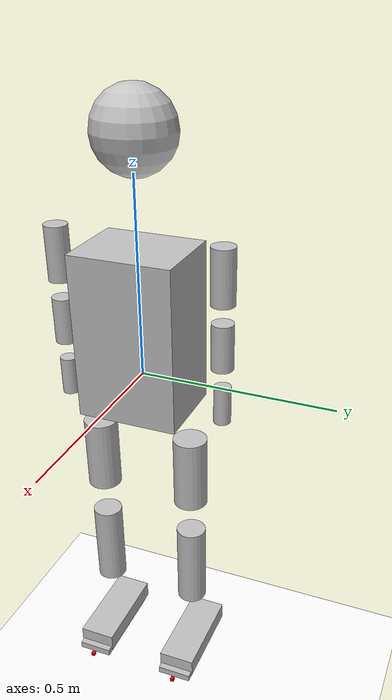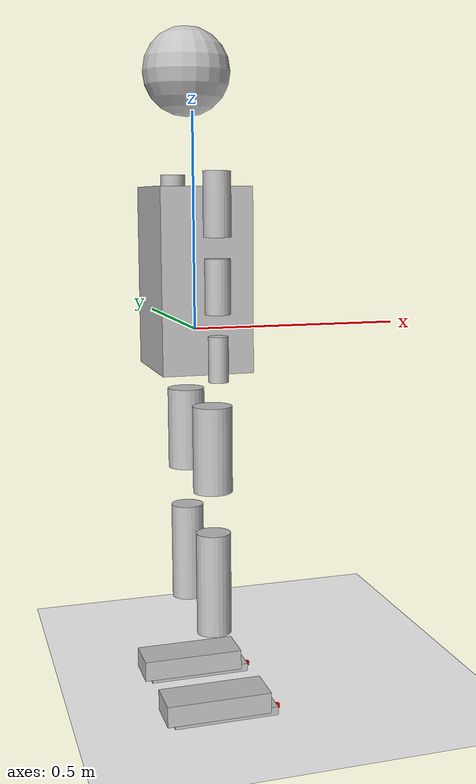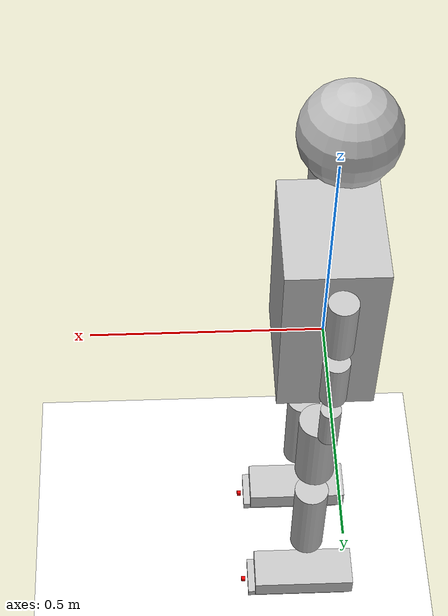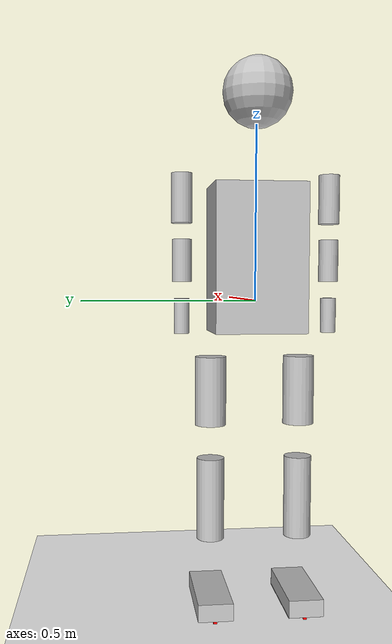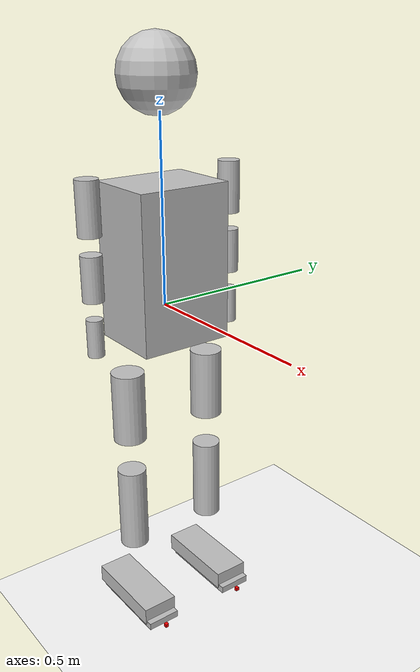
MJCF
<mujoco model="HU_D04_01">
  <compiler angle="radian" meshdir="../meshes_mujoco/" autolimits="true"/>
  <worldbody>
    <geom name="ground" type="plane" size="10 10 0.1" pos="0 0 -0.91" rgba="1 1 1 1"/>
    <body name="base_link">
      <inertial pos="0.002916 -8e-06 0.041359" quat="0.612805 0.613066 -0.352574 0.352579" mass="5.90496" diaginertia="0.0416288 0.0370522 0.013916"/>
      <joint name="floating_base_joint" type="free"/>
      <geom size="0.105 0.13 0.21" pos="0 0 0.12" type="box" contype="0" conaffinity="0" group="1" density="0" rgba="0.75294 0.75294 0.75294 1"/>
      <body name="left_hip_pitch_link" pos="0.017007 0.1283 0.0081917">
        <inertial pos="0.0019 0.001536 -0.086008" quat="0.707518 0.0266383 1.73517e-05 0.706193" mass="2.25501" diaginertia="0.00381732 0.00323349 0.00288619"/>
        <joint name="left_hip_pitch_joint" pos="0 0 0" axis="0 0.906308 -0.422619" range="-2.618 2.618"/>
        <body name="left_hip_roll_link" pos="-0.01 0.0016596 -0.0920417">
          <inertial pos="0.00075 1e-05 -0.118609" quat="0.711183 0.0283968 0.0283187 0.701862" mass="2.12181" diaginertia="0.00426704 0.00404598 0.00233098"/>
          <joint name="left_hip_roll_joint" pos="0 0 0" axis="1 0 0" range="-0.8727 2.094"/>
          <body name="left_hip_yaw_link" pos="0 0 -0.1774">
            <inertial pos="0.006364 0.000963 -0.143266" quat="0.708658 0.0234255 0.019567 0.704891" mass="2.9941" diaginertia="0.0246096 0.0241756 0.00478379"/>
            <joint name="left_hip_yaw_joint" pos="0 0 0" axis="0 0 1" range="-2.618 2.618"/>
            <geom size="0.045 0.1" type="cylinder" contype="0" conaffinity="0" group="1" density="0" rgba="0.75294 0.75294 0.75294 1"/>
            <body name="left_knee_link" pos="0 0 -0.1976">
              <inertial pos="0.007614 0.005361 -0.142099" quat="0.988682 -0.0432819 0.00451233 0.143575" mass="2.95837" diaginertia="0.0278704 0.0275597 0.00283291"/>
              <joint name="left_knee_joint" pos="0 0 0" axis="0 1 0" range="-0.087 2.583"/>
              <geom size="0.04 0.12" pos="0 0 -0.12" type="cylinder" contype="0" conaffinity="0" group="1" density="0" rgba="0.75294 0.75294 0.75294 1"/>
              <body name="left_ankle_pitch_link" pos="0 0 -0.385">
                <inertial pos="0 0 0.001077" quat="0.707107 0.707107 0 0" mass="0.042944" diaginertia="4e-06 4e-06 2e-06"/>
                <joint name="left_ankle_pitch_joint" pos="0 0 0" axis="0 1 0" range="-1.012 0.611"/>
                <body name="left_ankle_roll_link">
                  <inertial pos="0.0097384 0 -0.0353129" quat="0.000738839 0.742709 0.000165367 0.669614" mass="1.024" diaginertia="0.00446858 0.00421783 0.000811547"/>
                  <joint name="left_ankle_roll_joint" pos="0 0 0" axis="1 0 0" range="-0.436 0.436"/>
                  <geom size="0.125 0.05 0.025" pos="0 0 -0.03" type="box" contype="0" conaffinity="0" group="1" density="0" rgba="0.75294 0.75294 0.75294 1"/>
                  <geom size="0.125 0.047 0.01" pos="0.018 0 -0.0535" type="box" rgba="0.75294 0.75294 0.75294 1"/>
                  <geom size="0.005 0.005 0.005" pos="0 0 -0.0625" type="box" contype="0" conaffinity="0" group="1" density="0" rgba="1 0 0 1"/>
                  <geom size="0.005 0.005 0.005" pos="-0.106 0 -0.0625" type="box" contype="0" conaffinity="0" group="1" density="0" rgba="1 0 0 1"/>
                  <geom size="0.005 0.005 0.005" pos="0.154 0 -0.0625" type="box" contype="0" conaffinity="0" group="1" density="0" rgba="1 0 0 1"/>
                </body>
              </body>
            </body>
          </body>
        </body>
      </body>
      <body name="right_hip_pitch_link" pos="0.017007 -0.1283 0.0081917">
        <inertial pos="0.0019 -0.001536 -0.086008" quat="0.706193 1.73517e-05 0.0266383 0.707518" mass="2.25501" diaginertia="0.00381732 0.00323349 0.00288619"/>
        <joint name="right_hip_pitch_joint" pos="0 0 0" axis="0 0.906308 0.422619" range="-2.618 2.618"/>
        <body name="right_hip_roll_link" pos="-0.01 -0.0016596 -0.0920417">
          <inertial pos="0.00075 -1e-05 -0.118609" quat="0.701862 0.0283187 0.0283968 0.711183" mass="2.12181" diaginertia="0.00426704 0.00404598 0.00233098"/>
          <joint name="right_hip_roll_joint" pos="0 0 0" axis="1 0 0" range="-2.094 0.8727"/>
          <body name="right_hip_yaw_link" pos="0 0 -0.1774">
            <inertial pos="0.006364 -0.000963 -0.143266" quat="0.704891 0.019567 0.0234255 0.708658" mass="2.9941" diaginertia="0.0246096 0.0241756 0.00478379"/>
            <joint name="right_hip_yaw_joint" pos="0 0 0" axis="0 0 1" range="-2.618 2.618"/>
            <geom size="0.045 0.1" type="cylinder" contype="0" conaffinity="0" group="1" density="0" rgba="0.75294 0.75294 0.75294 1"/>
            <body name="right_knee_link" pos="0 0 -0.1976">
              <inertial pos="0.007614 -0.005361 -0.142099" quat="0.988682 0.0432819 0.00451233 -0.143575" mass="2.95837" diaginertia="0.0278704 0.0275597 0.00283291"/>
              <joint name="right_knee_joint" pos="0 0 0" axis="0 1 0" range="-0.087 2.583"/>
              <geom size="0.04 0.12" pos="0 0 -0.12" type="cylinder" contype="0" conaffinity="0" group="1" density="0" rgba="0.75294 0.75294 0.75294 1"/>
              <body name="right_ankle_pitch_link" pos="0 0 -0.385">
                <inertial pos="0 0 0.001077" quat="0.707107 0.707107 0 0" mass="0.042944" diaginertia="4e-06 4e-06 2e-06"/>
                <joint name="right_ankle_pitch_joint" pos="0 0 0" axis="0 1 0" range="-1.012 0.611"/>
                <body name="right_ankle_roll_link">
                  <inertial pos="0.0097384 0 -0.0353129" quat="-0.000738839 0.742709 -0.000165367 0.669614" mass="1.024" diaginertia="0.00446858 0.00421783 0.000811547"/>
                  <joint name="right_ankle_roll_joint" pos="0 0 0" axis="1 0 0" range="-0.436 0.436"/>
                  <geom size="0.125 0.05 0.025" pos="0 0 -0.03" type="box" contype="0" conaffinity="0" group="1" density="0" rgba="0.75294 0.75294 0.75294 1"/>
                  <geom size="0.125 0.047 0.01" pos="0.018 0 -0.0535" type="box" rgba="0.75294 0.75294 0.75294 1"/>
                  <geom size="0.005 0.005 0.005" pos="0 0 -0.0625" type="box" contype="0" conaffinity="0" group="1" density="0" rgba="1 0 0 1"/>
                  <geom size="0.005 0.005 0.005" pos="-0.106 0 -0.0625" type="box" contype="0" conaffinity="0" group="1" density="0" rgba="1 0 0 1"/>
                  <geom size="0.005 0.005 0.005" pos="0.154 0 -0.0625" type="box" contype="0" conaffinity="0" group="1" density="0" rgba="1 0 0 1"/>
                </body>
              </body>
            </body>
          </body>
        </body>
      </body>
      <body name="waist_yaw_link" pos="0 0 0.10239">
        <inertial pos="0.019885 -0.000163 0.029632" quat="0.00532361 0.693156 0.0120982 0.720666" mass="0.654749" diaginertia="0.00115684 0.00110802 0.000615135"/>
        <joint name="waist_yaw_joint" pos="0 0 0" axis="0 0 1" range="-2.618 2.618"/>
        <body name="waist_roll_link" pos="0 0 0.057">
          <inertial pos="0 0 -0.000149" quat="0.5 0.5 -0.5 0.5" mass="0.291501" diaginertia="0.000164 0.00016 3.6e-05"/>
          <joint name="waist_roll_joint" pos="0 0 0" axis="1 0 0" range="-0.524 0.524"/>
          <body name="waist_pitch_link">
            <inertial pos="-0.006815 3.8e-05 0.196229" quat="0.999972 -0.000918368 -0.00735428 0.000965187" mass="11.8822" diaginertia="0.169245 0.136241 0.104444"/>
            <joint name="waist_pitch_joint" pos="0 0 0" axis="0 1 0" range="-0.524 0.785"/>
            <body name="left_shoulder_pitch_link" pos="0 0.1589 0.2822">
              <inertial pos="0.003151 0.031104 -2.2e-05" quat="-0.0676949 0.703859 0.0676949 0.703859" mass="0.244765" diaginertia="0.000429 0.000371465 0.000248535"/>
              <joint name="left_shoulder_pitch_joint" pos="0 0 0" axis="0 1 0" range="-2.792 2.792"/>
              <body name="left_shoulder_roll_link" pos="0 0.055 0">
                <inertial pos="0.003525 8.8e-05 -0.046695" quat="0.999352 0.000207001 0.0359383 -0.00202758" mass="1.74074" diaginertia="0.00496658 0.004931 0.00136542"/>
                <joint name="left_shoulder_roll_joint" pos="0 0 0" axis="1 0 0" range="-0.087 3.229"/>
                <body name="left_shoulder_yaw_link" pos="0 0 -0.1306">
                  <inertial pos="-0.010067 0.003571 -0.065207" quat="0.997939 0.0490395 0.020919 -0.0357061" mass="0.307657" diaginertia="0.000875418 0.00074071 0.000400871"/>
                  <joint name="left_shoulder_yaw_joint" pos="0 0 0" axis="0 0 1" range="-3.403 1.571"/>
                  <geom size="0.03 0.07" pos="0 0 -0.02" type="cylinder" contype="0" conaffinity="0" group="1" density="0" rgba="0.75294 0.75294 0.75294 1"/>
                  <body name="left_elbow_link" pos="0 0 -0.1157">
                    <inertial pos="5.7e-05 0.004497 -0.027441" quat="0.66133 -0.0245278 0.0213656 0.74939" mass="1.27546" diaginertia="0.00288485 0.00285163 0.000879522"/>
                    <joint name="left_elbow_joint" pos="0 0 0" axis="0 1 0" range="-2.443 1.571"/>
                    <geom size="0.028 0.06" pos="0 0 -0.08" type="cylinder" contype="0" conaffinity="0" group="1" density="0" rgba="0.75294 0.75294 0.75294 1"/>
                    <body name="left_wrist_yaw_link" pos="0 0.001 -0.1188">
                      <inertial pos="-0.00242 0.000421 -0.01484" quat="0.713389 0.700768 0 0" mass="0.132906" diaginertia="0.000145 0.000142018 8.59821e-05"/>
                      <joint name="left_wrist_yaw_joint" pos="0 0 0" axis="0 0 1" range="-2.356 0.785"/>
                      <body name="left_wrist_pitch_link" pos="0 0 -0.0342">
                        <inertial pos="0.001436 0.001303 -0.032233" quat="0.706358 -0.0277376 -0.00233692 0.707308" mass="0.658602" diaginertia="0.000963862 0.000953193 0.000293945"/>
                        <joint name="left_wrist_pitch_joint" pos="0 0 0" axis="0 1 0" range="-1.571 1.571"/>
                        <body name="left_wrist_roll_link" pos="0 0 -0.065">
                          <inertial pos="0.00467891 -0.00203899 -0.0886705" quat="0.763154 -0.0294715 0.00103369 0.645543" mass="0.583445" diaginertia="0.00228342 0.00212391 0.000439146"/>
                          <joint name="left_wrist_roll_joint" pos="0 0 0" axis="1 0 0" range="-1.571 1.571"/>
                          <geom size="0.022 0.05" pos="0 0 -0.02" type="cylinder" contype="0" conaffinity="0" group="1" density="0" rgba="0.75294 0.75294 0.75294 1"/>
                          <geom size="0.005 0.005 0.005" pos="0 0 -0.058" type="box" contype="0" conaffinity="0" group="1" density="0" rgba="1 0 0 1"/>
                          <geom size="0.005 0.005 0.005" pos="0 0 -0.058" quat="0.707105 0 0.707108 0" type="box" contype="0" conaffinity="0" group="1" density="0" rgba="1 0 0 1"/>
                        </body>
                      </body>
                    </body>
                  </body>
                </body>
              </body>
            </body>
            <body name="right_shoulder_pitch_link" pos="0 -0.1589 0.2822">
              <inertial pos="0.003151 -0.031104 -2.2e-05" quat="0.0676949 0.703859 -0.0676949 0.703859" mass="0.244765" diaginertia="0.000429 0.000371465 0.000248535"/>
              <joint name="right_shoulder_pitch_joint" pos="0 0 0" axis="0 1 0" range="-2.792 2.792"/>
              <body name="right_shoulder_roll_link" pos="0 -0.055 0">
                <inertial pos="0.003525 -8.8e-05 -0.046695" quat="0.999352 -0.000207001 0.0359383 0.00202758" mass="1.74074" diaginertia="0.00496658 0.004931 0.00136542"/>
                <joint name="right_shoulder_roll_joint" pos="0 0 0" axis="1 0 0" range="-3.229 0.087"/>
                <body name="right_shoulder_yaw_link" pos="0 0 -0.1306">
                  <inertial pos="-0.010067 -0.003571 -0.065207" quat="0.997939 -0.0490395 0.020919 0.0357061" mass="0.307657" diaginertia="0.000875418 0.00074071 0.000400871"/>
                  <joint name="right_shoulder_yaw_joint" pos="0 0 0" axis="0 0 1" range="-1.571 3.403"/>
                  <geom size="0.03 0.07" pos="0 0 -0.02" type="cylinder" contype="0" conaffinity="0" group="1" density="0" rgba="0.75294 0.75294 0.75294 1"/>
                  <body name="right_elbow_link" pos="0 0 -0.1157">
                    <inertial pos="5.7e-05 -0.004497 -0.027441" quat="0.74939 0.0213656 -0.0245278 0.66133" mass="1.27546" diaginertia="0.00288485 0.00285163 0.000879522"/>
                    <joint name="right_elbow_joint" pos="0 0 0" axis="0 1 0" range="-2.443 1.571"/>
                    <geom size="0.028 0.06" pos="0 0 -0.08" type="cylinder" contype="0" conaffinity="0" group="1" density="0" rgba="0.75294 0.75294 0.75294 1"/>
                    <body name="right_wrist_yaw_link" pos="0 -0.001 -0.1188">
                      <inertial pos="-0.00242 -0.000421 -0.01484" quat="0.700768 0.713389 0 0" mass="0.132906" diaginertia="0.000145 0.000142018 8.59821e-05"/>
                      <joint name="right_wrist_yaw_joint" pos="0 0 0" axis="0 0 1" range="-0.785 2.356"/>
                      <body name="right_wrist_pitch_link" pos="0 0 -0.0342">
                        <inertial pos="0.001436 -0.001303 -0.032233" quat="0.707308 -0.00233692 -0.0277376 0.706358" mass="0.658602" diaginertia="0.000963862 0.000953193 0.000293945"/>
                        <joint name="right_wrist_pitch_joint" pos="0 0 0" axis="0 1 0" range="-1.571 1.571"/>
                        <body name="right_wrist_roll_link" pos="0 0 -0.065">
                          <inertial pos="0.00467891 0.00203899 -0.0886705" quat="0.645543 0.00103369 -0.0294715 0.763154" mass="0.583445" diaginertia="0.00228342 0.00212391 0.000439146"/>
                          <joint name="right_wrist_roll_joint" pos="0 0 0" axis="1 0 0" range="-1.571 1.571"/>
                          <geom size="0.022 0.05" pos="0 0 -0.02" type="cylinder" contype="0" conaffinity="0" group="1" density="0" rgba="0.75294 0.75294 0.75294 1"/>
                          <geom size="0.005 0.005 0.005" pos="0 0 -0.058" type="box" contype="0" conaffinity="0" group="1" density="0" rgba="1 0 0 1"/>
                          <geom size="0.005 0.005 0.005" pos="0 0 -0.058" quat="0.707105 0 0.707108 0" type="box" contype="0" conaffinity="0" group="1" density="0" rgba="1 0 0 1"/>
                        </body>
                      </body>
                    </body>
                  </body>
                </body>
              </body>
            </body>
            <body name="head_yaw_link" pos="-0.013 0 0.3882">
              <inertial pos="-7e-05 0.002132 0.037884" quat="0.990388 0.0534065 -0.0629858 0.110957" mass="0.35819" diaginertia="0.000163282 0.000162189 0.000145528"/>
              <joint name="head_yaw_joint" pos="0 0 0" axis="0 0 1" range="-0.785 0.785"/>
              <geom size="0.035 0.04" type="cylinder" contype="0" conaffinity="0" group="1" density="0" rgba="0.75294 0.75294 0.75294 1"/>
              <body name="head_pitch_link" pos="0 0 0.0395">
                <inertial pos="0.010255 -0.000319 0.069397" quat="0.552937 0.549111 -0.444832 0.441432" mass="0.776041" diaginertia="0.00353783 0.00260718 0.00233699"/>
                <joint name="head_pitch_joint" pos="0 0 0" axis="0 1 0" range="-0.524 0.785"/>
                <geom size="0.1" contype="0" conaffinity="0" group="1" density="0" rgba="0.75294 0.75294 0.75294 1"/>
              </body>
            </body>
          </body>
        </body>
      </body>
    </body>
  </worldbody>
</mujoco>
